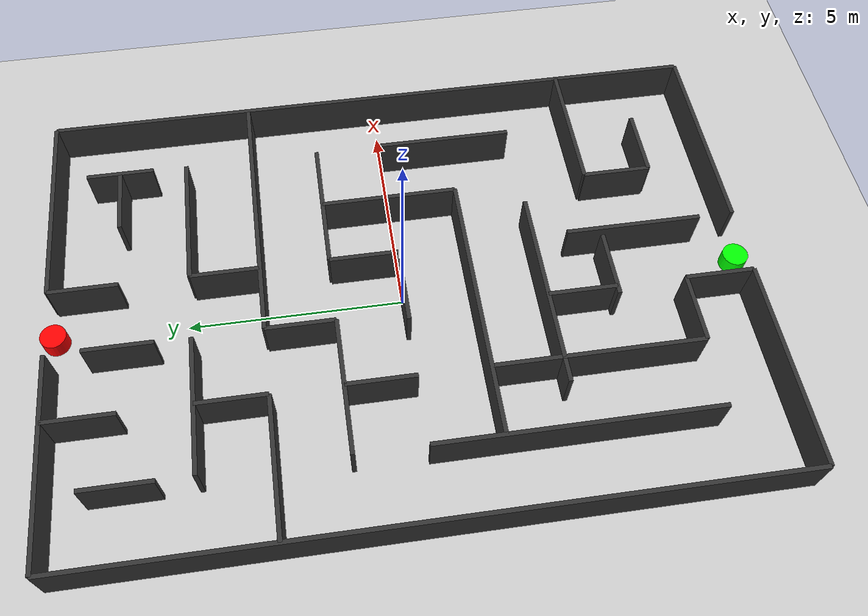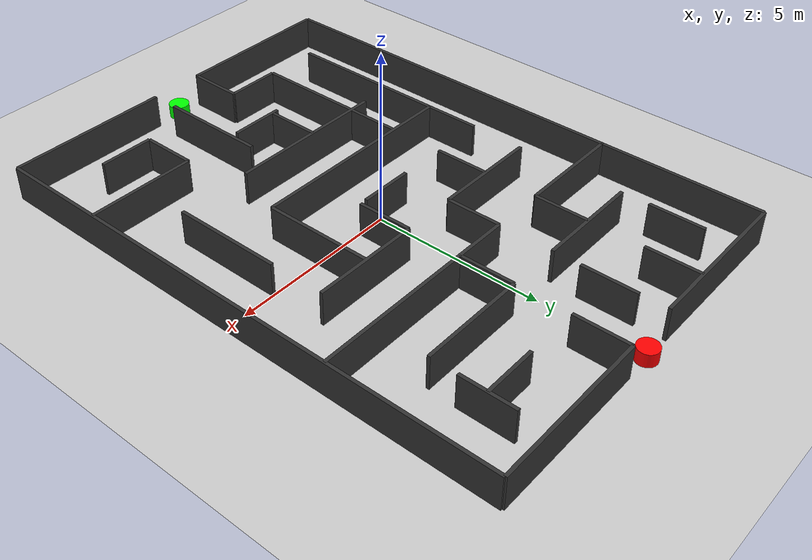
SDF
<?xml version="1.0" ?>
<sdf version="1.8">
    <world name="maze_world_7x10">
        <!-- Physics -->
        <physics name="1ms" type="ignored">
            <max_step_size>0.001</max_step_size>
            <real_time_factor>1.0</real_time_factor>
        </physics>

        <!-- Plugins -->
        <plugin filename="ignition-gazebo-physics-system" name="ignition::gazebo::systems::Physics">
        </plugin>
        <plugin filename="ignition-gazebo-user-commands-system" name="ignition::gazebo::systems::UserCommands">
        </plugin>
        <plugin filename="ignition-gazebo-scene-broadcaster-system" name="ignition::gazebo::systems::SceneBroadcaster">
        </plugin>

        <!-- Lighting -->
        <light type="directional" name="sun">
            <cast_shadows>true</cast_shadows>
            <pose>0 0 10 0 0 0</pose>
            <diffuse>0.8 0.8 0.8 1</diffuse>
            <specular>0.2 0.2 0.2 1</specular>
            <attenuation>
                <range>1000</range>
                <constant>0.9</constant>
                <linear>0.01</linear>
                <quadratic>0.001</quadratic>
            </attenuation>
            <direction>-0.5 0.1 -0.9</direction>
        </light>

        <!-- Ground Plane -->
        <model name="ground_plane">
            <static>true</static>
            <link name="link">
                <collision name="collision">
                    <geometry>
                        <plane>
                            <normal>0 0 1</normal>
                        </plane>
                    </geometry>
                </collision>
                <visual name="visual">
                    <geometry>
                        <plane>
                            <normal>0 0 1</normal>
                            <size>30 30</size>
                        </plane>
                    </geometry>
                    <material>
                        <ambient>0.8 0.8 0.8 1</ambient>
                        <diffuse>0.8 0.8 0.8 1</diffuse>
                        <specular>0.8 0.8 0.8 1</specular>
                    </material>
                </visual>
            </link>
        </model>

        <!-- SVG: 116x164 (7 genişlik × 10 yükseklik) → Gazebo: 11.6m × 16.4m -->
        <!-- Merkez: SVG (58, 82) → Gazebo (0, 0) -->
        <!-- Ölçek: 1 SVG birimi = 0.1m -->

        <!-- HORIZONTAL WALLS (Yatay Duvarlar) -->

        <!-- Line 1: x1="2" y1="2" x2="50" y2="2" -->
        <model name="wall_h1">
            <static>true</static>
            <pose>-3.2 8 0.5 0 0 0</pose>
            <link name="link">
                <collision name="collision">
                    <geometry>
                        <box>
                            <size>4.8 0.1 1</size>
                        </box>
                    </geometry>
                </collision>
                <visual name="visual">
                    <geometry>
                        <box>
                            <size>4.8 0.1 1</size>
                        </box>
                    </geometry>
                    <material>
                        <ambient>0.2 0.2 0.2 1</ambient>
                        <diffuse>0.2 0.2 0.2 1</diffuse>
                    </material>
                </visual>
            </link>
        </model>

        <!-- Line 2: x1="66" y1="2" x2="114" y2="2" -->
        <model name="wall_h2">
            <static>true</static>
            <pose>3.2 8 0.5 0 0 0</pose>
            <link name="link">
                <collision name="collision">
                    <geometry>
                        <box>
                            <size>4.8 0.1 1</size>
                        </box>
                    </geometry>
                </collision>
                <visual name="visual">
                    <geometry>
                        <box>
                            <size>4.8 0.1 1</size>
                        </box>
                    </geometry>
                    <material>
                        <ambient>0.2 0.2 0.2 1</ambient>
                        <diffuse>0.2 0.2 0.2 1</diffuse>
                    </material>
                </visual>
            </link>
        </model>

        <!-- Line 3: x1="82" y1="18" x2="98" y2="18" -->
        <model name="wall_h3">
            <static>true</static>
            <pose>3.2 6.4 0.5 0 0 0</pose>
            <link name="link">
                <collision name="collision">
                    <geometry>
                        <box>
                            <size>1.6 0.1 1</size>
                        </box>
                    </geometry>
                </collision>
                <visual name="visual">
                    <geometry>
                        <box>
                            <size>1.6 0.1 1</size>
                        </box>
                    </geometry>
                    <material>
                        <ambient>0.2 0.2 0.2 1</ambient>
                        <diffuse>0.2 0.2 0.2 1</diffuse>
                    </material>
                </visual>
            </link>
        </model>

        <!-- Line 4: x1="18" y1="34" x2="50" y2="34" -->
        <model name="wall_h4">
            <static>true</static>
            <pose>-2.4 4.8 0.5 0 0 0</pose>
            <link name="link">
                <collision name="collision">
                    <geometry>
                        <box>
                            <size>3.2 0.1 1</size>
                        </box>
                    </geometry>
                </collision>
                <visual name="visual">
                    <geometry>
                        <box>
                            <size>3.2 0.1 1</size>
                        </box>
                    </geometry>
                    <material>
                        <ambient>0.2 0.2 0.2 1</ambient>
                        <diffuse>0.2 0.2 0.2 1</diffuse>
                    </material>
                </visual>
            </link>
        </model>

        <!-- Line 5: x1="66" y1="34" x2="98" y2="34" -->
        <model name="wall_h5">
            <static>true</static>
            <pose>2.4 4.8 0.5 0 0 0</pose>
            <link name="link">
                <collision name="collision">
                    <geometry>
                        <box>
                            <size>3.2 0.1 1</size>
                        </box>
                    </geometry>
                </collision>
                <visual name="visual">
                    <geometry>
                        <box>
                            <size>3.2 0.1 1</size>
                        </box>
                    </geometry>
                    <material>
                        <ambient>0.2 0.2 0.2 1</ambient>
                        <diffuse>0.2 0.2 0.2 1</diffuse>
                    </material>
                </visual>
            </link>
        </model>

        <!-- Line 6: x1="2" y1="50" x2="34" y2="50" -->
        <model name="wall_h6">
            <static>true</static>
            <pose>-4 3.2 0.5 0 0 0</pose>
            <link name="link">
                <collision name="collision">
                    <geometry>
                        <box>
                            <size>3.2 0.1 1</size>
                        </box>
                    </geometry>
                </collision>
                <visual name="visual">
                    <geometry>
                        <box>
                            <size>3.2 0.1 1</size>
                        </box>
                    </geometry>
                    <material>
                        <ambient>0.2 0.2 0.2 1</ambient>
                        <diffuse>0.2 0.2 0.2 1</diffuse>
                    </material>
                </visual>
            </link>
        </model>

        <!-- Line 7: x1="50" y1="50" x2="114" y2="50" -->
        <model name="wall_h7">
            <static>true</static>
            <pose>2.4 3.2 0.5 0 0 0</pose>
            <link name="link">
                <collision name="collision">
                    <geometry>
                        <box>
                            <size>6.4 0.1 1</size>
                        </box>
                    </geometry>
                </collision>
                <visual name="visual">
                    <geometry>
                        <box>
                            <size>6.4 0.1 1</size>
                        </box>
                    </geometry>
                    <material>
                        <ambient>0.2 0.2 0.2 1</ambient>
                        <diffuse>0.2 0.2 0.2 1</diffuse>
                    </material>
                </visual>
            </link>
        </model>

        <!-- Line 8: x1="18" y1="66" x2="50" y2="66" -->
        <model name="wall_h8">
            <static>true</static>
            <pose>-2.4 1.6 0.5 0 0 0</pose>
            <link name="link">
                <collision name="collision">
                    <geometry>
                        <box>
                            <size>3.2 0.1 1</size>
                        </box>
                    </geometry>
                </collision>
                <visual name="visual">
                    <geometry>
                        <box>
                            <size>3.2 0.1 1</size>
                        </box>
                    </geometry>
                    <material>
                        <ambient>0.2 0.2 0.2 1</ambient>
                        <diffuse>0.2 0.2 0.2 1</diffuse>
                    </material>
                </visual>
            </link>
        </model>

        <!-- Line 9: x1="66" y1="66" x2="98" y2="66" -->
        <model name="wall_h9">
            <static>true</static>
            <pose>2.4 1.6 0.5 0 0 0</pose>
            <link name="link">
                <collision name="collision">
                    <geometry>
                        <box>
                            <size>3.2 0.1 1</size>
                        </box>
                    </geometry>
                </collision>
                <visual name="visual">
                    <geometry>
                        <box>
                            <size>3.2 0.1 1</size>
                        </box>
                    </geometry>
                    <material>
                        <ambient>0.2 0.2 0.2 1</ambient>
                        <diffuse>0.2 0.2 0.2 1</diffuse>
                    </material>
                </visual>
            </link>
        </model>

        <!-- Line 10: x1="50" y1="82" x2="66" y2="82" -->
        <model name="wall_h10">
            <static>true</static>
            <pose>-0.2 0 0.5 0 0 0</pose>
            <link name="link">
                <collision name="collision">
                    <geometry>
                        <box>
                            <size>1.6 0.1 1</size>
                        </box>
                    </geometry>
                </collision>
                <visual name="visual">
                    <geometry>
                        <box>
                            <size>1.6 0.1 1</size>
                        </box>
                    </geometry>
                    <material>
                        <ambient>0.2 0.2 0.2 1</ambient>
                        <diffuse>0.2 0.2 0.2 1</diffuse>
                    </material>
                </visual>
            </link>
        </model>

        <!-- Line 11: x1="18" y1="98" x2="82" y2="98" -->
        <model name="wall_h11">
            <static>true</static>
            <pose>-0.8 -1.6 0.5 0 0 0</pose>
            <link name="link">
                <collision name="collision">
                    <geometry>
                        <box>
                            <size>6.4 0.1 1</size>
                        </box>
                    </geometry>
                </collision>
                <visual name="visual">
                    <geometry>
                        <box>
                            <size>6.4 0.1 1</size>
                        </box>
                    </geometry>
                    <material>
                        <ambient>0.2 0.2 0.2 1</ambient>
                        <diffuse>0.2 0.2 0.2 1</diffuse>
                    </material>
                </visual>
            </link>
        </model>

        <!-- Line 12: x1="50" y1="114" x2="98" y2="114" -->
        <model name="wall_h12">
            <static>true</static>
            <pose>-0.6 -3.2 0.5 0 0 0</pose>
            <link name="link">
                <collision name="collision">
                    <geometry>
                        <box>
                            <size>4.8 0.1 1</size>
                        </box>
                    </geometry>
                </collision>
                <visual name="visual">
                    <geometry>
                        <box>
                            <size>4.8 0.1 1</size>
                        </box>
                    </geometry>
                    <material>
                        <ambient>0.2 0.2 0.2 1</ambient>
                        <diffuse>0.2 0.2 0.2 1</diffuse>
                    </material>
                </visual>
            </link>
        </model>

        <!-- Line 13: x1="50" y1="130" x2="66" y2="130" -->
        <model name="wall_h13">
            <static>true</static>
            <pose>-0.2 -4.8 0.5 0 0 0</pose>
            <link name="link">
                <collision name="collision">
                    <geometry>
                        <box>
                            <size>1.6 0.1 1</size>
                        </box>
                    </geometry>
                </collision>
                <visual name="visual">
                    <geometry>
                        <box>
                            <size>1.6 0.1 1</size>
                        </box>
                    </geometry>
                    <material>
                        <ambient>0.2 0.2 0.2 1</ambient>
                        <diffuse>0.2 0.2 0.2 1</diffuse>
                    </material>
                </visual>
            </link>
        </model>

        <!-- Line 14: x1="82" y1="130" x2="114" y2="130" -->
        <model name="wall_h14">
            <static>true</static>
            <pose>4 -4.8 0.5 0 0 0</pose>
            <link name="link">
                <collision name="collision">
                    <geometry>
                        <box>
                            <size>3.2 0.1 1</size>
                        </box>
                    </geometry>
                </collision>
                <visual name="visual">
                    <geometry>
                        <box>
                            <size>3.2 0.1 1</size>
                        </box>
                    </geometry>
                    <material>
                        <ambient>0.2 0.2 0.2 1</ambient>
                        <diffuse>0.2 0.2 0.2 1</diffuse>
                    </material>
                </visual>
            </link>
        </model>

        <!-- Line 15: x1="34" y1="146" x2="50" y2="146" -->
        <model name="wall_h15">
            <static>true</static>
            <pose>-1.6 -6.4 0.5 0 0 0</pose>
            <link name="link">
                <collision name="collision">
                    <geometry>
                        <box>
                            <size>1.6 0.1 1</size>
                        </box>
                    </geometry>
                </collision>
                <visual name="visual">
                    <geometry>
                        <box>
                            <size>1.6 0.1 1</size>
                        </box>
                    </geometry>
                    <material>
                        <ambient>0.2 0.2 0.2 1</ambient>
                        <diffuse>0.2 0.2 0.2 1</diffuse>
                    </material>
                </visual>
            </link>
        </model>

        <!-- Line 16: x1="82" y1="146" x2="98" y2="146" -->
        <model name="wall_h16">
            <static>true</static>
            <pose>3.2 -6.4 0.5 0 0 0</pose>
            <link name="link">
                <collision name="collision">
                    <geometry>
                        <box>
                            <size>1.6 0.1 1</size>
                        </box>
                    </geometry>
                </collision>
                <visual name="visual">
                    <geometry>
                        <box>
                            <size>1.6 0.1 1</size>
                        </box>
                    </geometry>
                    <material>
                        <ambient>0.2 0.2 0.2 1</ambient>
                        <diffuse>0.2 0.2 0.2 1</diffuse>
                    </material>
                </visual>
            </link>
        </model>

        <!-- Line 17: x1="2" y1="162" x2="50" y2="162" -->
        <model name="wall_h17">
            <static>true</static>
            <pose>-3.2 -8 0.5 0 0 0</pose>
            <link name="link">
                <collision name="collision">
                    <geometry>
                        <box>
                            <size>4.8 0.1 1</size>
                        </box>
                    </geometry>
                </collision>
                <visual name="visual">
                    <geometry>
                        <box>
                            <size>4.8 0.1 1</size>
                        </box>
                    </geometry>
                    <material>
                        <ambient>0.2 0.2 0.2 1</ambient>
                        <diffuse>0.2 0.2 0.2 1</diffuse>
                    </material>
                </visual>
            </link>
        </model>

        <!-- Line 18: x1="66" y1="162" x2="114" y2="162" -->
        <model name="wall_h18">
            <static>true</static>
            <pose>3.2 -8 0.5 0 0 0</pose>
            <link name="link">
                <collision name="collision">
                    <geometry>
                        <box>
                            <size>4.8 0.1 1</size>
                        </box>
                    </geometry>
                </collision>
                <visual name="visual">
                    <geometry>
                        <box>
                            <size>4.8 0.1 1</size>
                        </box>
                    </geometry>
                    <material>
                        <ambient>0.2 0.2 0.2 1</ambient>
                        <diffuse>0.2 0.2 0.2 1</diffuse>
                    </material>
                </visual>
            </link>
        </model>

        <!-- VERTICAL WALLS (Dikey Duvarlar) -->

        <!-- Line 19: x1="2" y1="2" x2="2" y2="162" -->
        <model name="wall_v1">
            <static>true</static>
            <pose>-5.6 0 0.5 0 0 0</pose>
            <link name="link">
                <collision name="collision">
                    <geometry>
                        <box>
                            <size>0.1 16 1</size>
                        </box>
                    </geometry>
                </collision>
                <visual name="visual">
                    <geometry>
                        <box>
                            <size>0.1 16 1</size>
                        </box>
                    </geometry>
                    <material>
                        <ambient>0.2 0.2 0.2 1</ambient>
                        <diffuse>0.2 0.2 0.2 1</diffuse>
                    </material>
                </visual>
            </link>
        </model>

        <!-- Line 20: x1="18" y1="18" x2="18" y2="34" -->
        <model name="wall_v2">
            <static>true</static>
            <pose>-4 6.4 0.5 0 0 0</pose>
            <link name="link">
                <collision name="collision">
                    <geometry>
                        <box>
                            <size>0.1 1.6 1</size>
                        </box>
                    </geometry>
                </collision>
                <visual name="visual">
                    <geometry>
                        <box>
                            <size>0.1 1.6 1</size>
                        </box>
                    </geometry>
                    <material>
                        <ambient>0.2 0.2 0.2 1</ambient>
                        <diffuse>0.2 0.2 0.2 1</diffuse>
                    </material>
                </visual>
            </link>
        </model>

        <!-- Line 21: x1="18" y1="82" x2="18" y2="146" -->
        <model name="wall_v3">
            <static>true</static>
            <pose>-4 -3.2 0.5 0 0 0</pose>
            <link name="link">
                <collision name="collision">
                    <geometry>
                        <box>
                            <size>0.1 6.4 1</size>
                        </box>
                    </geometry>
                </collision>
                <visual name="visual">
                    <geometry>
                        <box>
                            <size>0.1 6.4 1</size>
                        </box>
                    </geometry>
                    <material>
                        <ambient>0.2 0.2 0.2 1</ambient>
                        <diffuse>0.2 0.2 0.2 1</diffuse>
                    </material>
                </visual>
            </link>
        </model>

        <!-- Line 22: x1="34" y1="2" x2="34" y2="18" -->
        <model name="wall_v4">
            <static>true</static>
            <pose>-2.4 7.2 0.5 0 0 0</pose>
            <link name="link">
                <collision name="collision">
                    <geometry>
                        <box>
                            <size>0.1 1.6 1</size>
                        </box>
                    </geometry>
                </collision>
                <visual name="visual">
                    <geometry>
                        <box>
                            <size>0.1 1.6 1</size>
                        </box>
                    </geometry>
                    <material>
                        <ambient>0.2 0.2 0.2 1</ambient>
                        <diffuse>0.2 0.2 0.2 1</diffuse>
                    </material>
                </visual>
            </link>
        </model>

        <!-- Line 23: x1="34" y1="34" x2="34" y2="50" -->
        <model name="wall_v5">
            <static>true</static>
            <pose>-2.4 4 0.5 0 0 0</pose>
            <link name="link">
                <collision name="collision">
                    <geometry>
                        <box>
                            <size>0.1 1.6 1</size>
                        </box>
                    </geometry>
                </collision>
                <visual name="visual">
                    <geometry>
                        <box>
                            <size>0.1 1.6 1</size>
                        </box>
                    </geometry>
                    <material>
                        <ambient>0.2 0.2 0.2 1</ambient>
                        <diffuse>0.2 0.2 0.2 1</diffuse>
                    </material>
                </visual>
            </link>
        </model>

        <!-- Line 24: x1="34" y1="66" x2="34" y2="82" -->
        <model name="wall_v6">
            <static>true</static>
            <pose>-2.4 0.8 0.5 0 0 0</pose>
            <link name="link">
                <collision name="collision">
                    <geometry>
                        <box>
                            <size>0.1 1.6 1</size>
                        </box>
                    </geometry>
                </collision>
                <visual name="visual">
                    <geometry>
                        <box>
                            <size>0.1 1.6 1</size>
                        </box>
                    </geometry>
                    <material>
                        <ambient>0.2 0.2 0.2 1</ambient>
                        <diffuse>0.2 0.2 0.2 1</diffuse>
                    </material>
                </visual>
            </link>
        </model>

        <!-- Line 25: x1="34" y1="98" x2="34" y2="146" -->
        <model name="wall_v7">
            <static>true</static>
            <pose>-2.4 -4 0.5 0 0 0</pose>
            <link name="link">
                <collision name="collision">
                    <geometry>
                        <box>
                            <size>0.1 4.8 1</size>
                        </box>
                    </geometry>
                </collision>
                <visual name="visual">
                    <geometry>
                        <box>
                            <size>0.1 4.8 1</size>
                        </box>
                    </geometry>
                    <material>
                        <ambient>0.2 0.2 0.2 1</ambient>
                        <diffuse>0.2 0.2 0.2 1</diffuse>
                    </material>
                </visual>
            </link>
        </model>

        <!-- Line 26: x1="50" y1="18" x2="50" y2="34" -->
        <model name="wall_v8">
            <static>true</static>
            <pose>-0.8 6.4 0.5 0 0 0</pose>
            <link name="link">
                <collision name="collision">
                    <geometry>
                        <box>
                            <size>0.1 1.6 1</size>
                        </box>
                    </geometry>
                </collision>
                <visual name="visual">
                    <geometry>
                        <box>
                            <size>0.1 1.6 1</size>
                        </box>
                    </geometry>
                    <material>
                        <ambient>0.2 0.2 0.2 1</ambient>
                        <diffuse>0.2 0.2 0.2 1</diffuse>
                    </material>
                </visual>
            </link>
        </model>

        <!-- Line 27: x1="50" y1="50" x2="50" y2="66" -->
        <model name="wall_v9">
            <static>true</static>
            <pose>-0.8 2.4 0.5 0 0 0</pose>
            <link name="link">
                <collision name="collision">
                    <geometry>
                        <box>
                            <size>0.1 1.6 1</size>
                        </box>
                    </geometry>
                </collision>
                <visual name="visual">
                    <geometry>
                        <box>
                            <size>0.1 1.6 1</size>
                        </box>
                    </geometry>
                    <material>
                        <ambient>0.2 0.2 0.2 1</ambient>
                        <diffuse>0.2 0.2 0.2 1</diffuse>
                    </material>
                </visual>
            </link>
        </model>

        <!-- Line 28: x1="50" y1="114" x2="50" y2="130" -->
        <model name="wall_v10">
            <static>true</static>
            <pose>-0.8 -4 0.5 0 0 0</pose>
            <link name="link">
                <collision name="collision">
                    <geometry>
                        <box>
                            <size>0.1 1.6 1</size>
                        </box>
                    </geometry>
                </collision>
                <visual name="visual">
                    <geometry>
                        <box>
                            <size>0.1 1.6 1</size>
                        </box>
                    </geometry>
                    <material>
                        <ambient>0.2 0.2 0.2 1</ambient>
                        <diffuse>0.2 0.2 0.2 1</diffuse>
                    </material>
                </visual>
            </link>
        </model>

        <!-- Line 29: x1="50" y1="146" x2="50" y2="162" -->
        <model name="wall_v11">
            <static>true</static>
            <pose>-0.8 -7.2 0.5 0 0 0</pose>
            <link name="link">
                <collision name="collision">
                    <geometry>
                        <box>
                            <size>0.1 1.6 1</size>
                        </box>
                    </geometry>
                </collision>
                <visual name="visual">
                    <geometry>
                        <box>
                            <size>0.1 1.6 1</size>
                        </box>
                    </geometry>
                    <material>
                        <ambient>0.2 0.2 0.2 1</ambient>
                        <diffuse>0.2 0.2 0.2 1</diffuse>
                    </material>
                </visual>
            </link>
        </model>

        <!-- Line 30: x1="66" y1="2" x2="66" y2="18" -->
        <model name="wall_v12">
            <static>true</static>
            <pose>0.8 7.2 0.5 0 0 0</pose>
            <link name="link">
                <collision name="collision">
                    <geometry>
                        <box>
                            <size>0.1 1.6 1</size>
                        </box>
                    </geometry>
                </collision>
                <visual name="visual">
                    <geometry>
                        <box>
                            <size>0.1 1.6 1</size>
                        </box>
                    </geometry>
                    <material>
                        <ambient>0.2 0.2 0.2 1</ambient>
                        <diffuse>0.2 0.2 0.2 1</diffuse>
                    </material>
                </visual>
            </link>
        </model>

        <!-- Line 31: x1="66" y1="34" x2="66" y2="50" -->
        <model name="wall_v13">
            <static>true</static>
            <pose>0.8 4 0.5 0 0 0</pose>
            <link name="link">
                <collision name="collision">
                    <geometry>
                        <box>
                            <size>0.1 1.6 1</size>
                        </box>
                    </geometry>
                </collision>
                <visual name="visual">
                    <geometry>
                        <box>
                            <size>0.1 1.6 1</size>
                        </box>
                    </geometry>
                    <material>
                        <ambient>0.2 0.2 0.2 1</ambient>
                        <diffuse>0.2 0.2 0.2 1</diffuse>
                    </material>
                </visual>
            </link>
        </model>

        <!-- Line 32: x1="66" y1="66" x2="66" y2="82" -->
        <model name="wall_v14">
            <static>true</static>
            <pose>0.8 0.8 0.5 0 0 0</pose>
            <link name="link">
                <collision name="collision">
                    <geometry>
                        <box>
                            <size>0.1 1.6 1</size>
                        </box>
                    </geometry>
                </collision>
                <visual name="visual">
                    <geometry>
                        <box>
                            <size>0.1 1.6 1</size>
                        </box>
                    </geometry>
                    <material>
                        <ambient>0.2 0.2 0.2 1</ambient>
                        <diffuse>0.2 0.2 0.2 1</diffuse>
                    </material>
                </visual>
            </link>
        </model>

        <!-- Line 33: x1="66" y1="130" x2="66" y2="162" -->
        <model name="wall_v15">
            <static>true</static>
            <pose>0.8 -5.6 0.5 0 0 0</pose>
            <link name="link">
                <collision name="collision">
                    <geometry>
                        <box>
                            <size>0.1 3.2 1</size>
                        </box>
                    </geometry>
                </collision>
                <visual name="visual">
                    <geometry>
                        <box>
                            <size>0.1 3.2 1</size>
                        </box>
                    </geometry>
                    <material>
                        <ambient>0.2 0.2 0.2 1</ambient>
                        <diffuse>0.2 0.2 0.2 1</diffuse>
                    </material>
                </visual>
            </link>
        </model>

        <!-- Line 34: x1="82" y1="66" x2="82" y2="98" -->
        <model name="wall_v16">
            <static>true</static>
            <pose>2.4 0 0.5 0 0 0</pose>
            <link name="link">
                <collision name="collision">
                    <geometry>
                        <box>
                            <size>0.1 3.2 1</size>
                        </box>
                    </geometry>
                </collision>
                <visual name="visual">
                    <geometry>
                        <box>
                            <size>0.1 3.2 1</size>
                        </box>
                    </geometry>
                    <material>
                        <ambient>0.2 0.2 0.2 1</ambient>
                        <diffuse>0.2 0.2 0.2 1</diffuse>
                    </material>
                </visual>
            </link>
        </model>

        <!-- Line 35: x1="82" y1="130" x2="82" y2="146" -->
        <model name="wall_v17">
            <static>true</static>
            <pose>2.4 -5.6 0.5 0 0 0</pose>
            <link name="link">
                <collision name="collision">
                    <geometry>
                        <box>
                            <size>0.1 1.6 1</size>
                        </box>
                    </geometry>
                </collision>
                <visual name="visual">
                    <geometry>
                        <box>
                            <size>0.1 1.6 1</size>
                        </box>
                    </geometry>
                    <material>
                        <ambient>0.2 0.2 0.2 1</ambient>
                        <diffuse>0.2 0.2 0.2 1</diffuse>
                    </material>
                </visual>
            </link>
        </model>

        <!-- Line 36: x1="98" y1="18" x2="98" y2="34" -->
        <model name="wall_v18">
            <static>true</static>
            <pose>4 6.4 0.5 0 0 0</pose>
            <link name="link">
                <collision name="collision">
                    <geometry>
                        <box>
                            <size>0.1 1.6 1</size>
                        </box>
                    </geometry>
                </collision>
                <visual name="visual">
                    <geometry>
                        <box>
                            <size>0.1 1.6 1</size>
                        </box>
                    </geometry>
                    <material>
                        <ambient>0.2 0.2 0.2 1</ambient>
                        <diffuse>0.2 0.2 0.2 1</diffuse>
                    </material>
                </visual>
            </link>
        </model>

        <!-- Line 37: x1="98" y1="82" x2="98" y2="114" -->
        <model name="wall_v19">
            <static>true</static>
            <pose>4 -1.6 0.5 0 0 0</pose>
            <link name="link">
                <collision name="collision">
                    <geometry>
                        <box>
                            <size>0.1 3.2 1</size>
                        </box>
                    </geometry>
                </collision>
                <visual name="visual">
                    <geometry>
                        <box>
                            <size>0.1 3.2 1</size>
                        </box>
                    </geometry>
                    <material>
                        <ambient>0.2 0.2 0.2 1</ambient>
                        <diffuse>0.2 0.2 0.2 1</diffuse>
                    </material>
                </visual>
            </link>
        </model>

        <!-- Line 38: x1="114" y1="2" x2="114" y2="162" -->
        <model name="wall_v20">
            <static>true</static>
            <pose>5.6 0 0.5 0 0 0</pose>
            <link name="link">
                <collision name="collision">
                    <geometry>
                        <box>
                            <size>0.1 16 1</size>
                        </box>
                    </geometry>
                </collision>
                <visual name="visual">
                    <geometry>
                        <box>
                            <size>0.1 16 1</size>
                        </box>
                    </geometry>
                    <material>
                        <ambient>0.2 0.2 0.2 1</ambient>
                        <diffuse>0.2 0.2 0.2 1</diffuse>
                    </material>
                </visual>
            </link>
        </model>

        <!-- Start Marker (Red) - üstte açıklıkta (50 ile 66 arası) -->
        <model name="start_marker">
            <static>true</static>
            <pose>0 8 0.2 0 0 0</pose>
            <link name="link">
                <visual name="visual">
                    <geometry>
                        <cylinder>
                            <radius>0.3</radius>
                            <length>0.4</length>
                        </cylinder>
                    </geometry>
                    <material>
                        <ambient>1 0 0 1</ambient>
                        <diffuse>1 0 0 1</diffuse>
                        <emissive>0.8 0 0 1</emissive>
                    </material>
                </visual>
            </link>
        </model>

        <!-- Finish Marker (Green) - altta açıklıkta (50 ile 66 arası) -->
        <model name="finish_marker">
            <static>true</static>
            <pose>0 -8 0.2 0 0 0</pose>
            <link name="link">
                <visual name="visual">
                    <geometry>
                        <cylinder>
                            <radius>0.3</radius>
                            <length>0.4</length>
                        </cylinder>
                    </geometry>
                    <material>
                        <ambient>0 1 0 1</ambient>
                        <diffuse>0 1 0 1</diffuse>
                        <emissive>0 0.8 0 1</emissive>
                    </material>
                </visual>
            </link>
        </model>

    </world>
</sdf>
